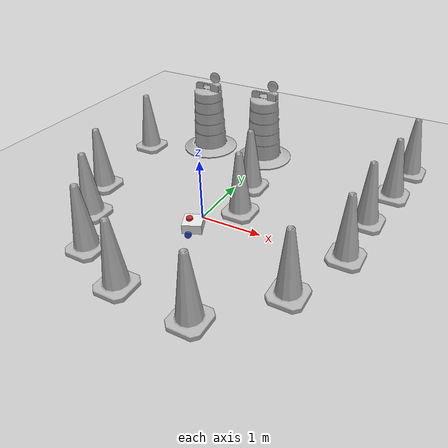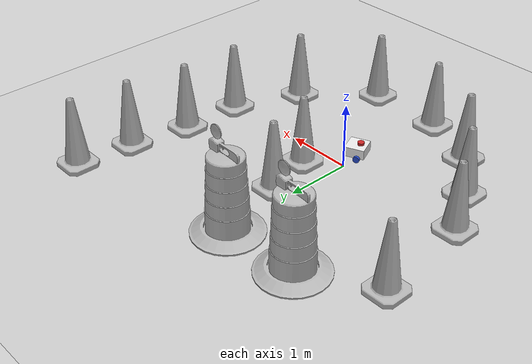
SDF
<sdf version="1.7">
 <world name="default">
  <light name="sun" type="directional">
   <pose>0 0 10 0 -0 0</pose>
   <diffuse>0.8 0.8 0.8 1</diffuse>
   <specular>0.2 0.2 0.2 1</specular>
   <attenuation>
    <range>1000</range>
    <constant>0.9</constant>
    <linear>0.01</linear>
    <quadratic>0.001</quadratic>
   </attenuation>
   <direction>-0.5 0.1 -0.9</direction>
   <spot><inner_angle>0</inner_angle><outer_angle>0</outer_angle><falloff>0</falloff></spot>
  </light>
  <model name="ground_plane">
   <static>1</static>
   <link name="link">
    <collision name="collision">
     <geometry><plane><normal>0 0 1</normal><size>100 100</size></plane></geometry>
     <surface>
      <contact><collide_bitmask>65535</collide_bitmask></contact>
      <friction><ode><mu>100</mu><mu2>50</mu2></ode></friction>
     </surface>
    </collision>
    <visual name="visual">
     <cast_shadows>0</cast_shadows>
     <geometry><plane><normal>0 0 1</normal><size>100 100</size></plane></geometry>
     <material>
      <script><uri>file://media/materials/scripts/gazebo.material</uri><name>Gazebo/Grey</name></script>
     </material>
    </visual>
   </link>
  </model>
  <gravity>0 0 -9.8</gravity>
  <magnetic_field>6e-06 2.3e-05 -4.2e-05</magnetic_field>
  <atmosphere type="adiabatic"/>
  <physics type="ode">
   <max_step_size>0.001</max_step_size>
   <real_time_factor>1</real_time_factor>
   <real_time_update_rate>1000</real_time_update_rate>
  </physics>
  <scene><ambient>0.4 0.4 0.4 1</ambient><background>0.7 0.7 0.7 1</background><shadows>1</shadows></scene>
  <audio><device>default</device></audio>
  <spherical_coordinates>
   <surface_model>EARTH_WGS84</surface_model>
   <latitude_deg>0</latitude_deg>
   <longitude_deg>0</longitude_deg>
   <elevation>0</elevation>
   <heading_deg>0</heading_deg>
  </spherical_coordinates>
  <model name="Construction Cone_clone_0">
   <link name="link">
    <collision name="collision">
     <geometry>
      <mesh><scale>10 10 10</scale><uri>model://construction_cone/meshes/construction_cone.dae</uri></mesh>
     </geometry>
    </collision>
    <visual name="visual">
     <geometry>
      <mesh><scale>10 10 10</scale><uri>model://construction_cone/meshes/construction_cone.dae</uri></mesh>
     </geometry>
    </visual>
    <inertial>
     <inertia><ixx>1</ixx><ixy>0</ixy><ixz>0</ixz><iyy>1</iyy><iyz>0</iyz><izz>1</izz></inertia>
     <mass>1</mass>
    </inertial>
   </link>
   <pose>-2 0 -8e-06 1e-06 -0 0</pose>
  </model>
  <model name="Construction Cone_clone_1">
   <link name="link">
    <collision name="collision">
     <geometry>
      <mesh><scale>10 10 10</scale><uri>model://construction_cone/meshes/construction_cone.dae</uri></mesh>
     </geometry>
    </collision>
    <visual name="visual">
     <geometry>
      <mesh><scale>10 10 10</scale><uri>model://construction_cone/meshes/construction_cone.dae</uri></mesh>
     </geometry>
    </visual>
    <inertial>
     <inertia><ixx>1</ixx><ixy>0</ixy><ixz>0</ixz><iyy>1</iyy><iyz>0</iyz><izz>1</izz></inertia>
     <mass>1</mass>
    </inertial>
   </link>
   <pose>-2.18676 1.5278 -0 0 -0 0</pose>
  </model>
  <model name="Construction Cone_clone_0_clone">
   <link name="link">
    <collision name="collision">
     <geometry>
      <mesh><scale>10 10 10</scale><uri>model://construction_cone/meshes/construction_cone.dae</uri></mesh>
     </geometry>
    </collision>
    <visual name="visual">
     <geometry>
      <mesh><scale>10 10 10</scale><uri>model://construction_cone/meshes/construction_cone.dae</uri></mesh>
     </geometry>
    </visual>
    <inertial>
     <inertia><ixx>1</ixx><ixy>0</ixy><ixz>0</ixz><iyy>1</iyy><iyz>0</iyz><izz>1</izz></inertia>
     <mass>1</mass>
    </inertial>
   </link>
   <pose>-1.04629 -1.40763 -0 0 0 -0.004245</pose>
  </model>
  <model name="my_bot">
   <link name="base_link">
    <inertial>
     <pose>0.055714 0 0.078571 0 -0 0</pose>
     <mass>0.7</mass>
     <inertia>
      <ixx>0.0064169</ixx>
      <ixy>0</ixy>
      <ixz>0.00118929</ixz>
      <iyy>0.00745405</iyy>
      <iyz>0</iyz>
      <izz>0.00876214</izz>
     </inertia>
    </inertial>
    <collision name="base_link_fixed_joint_lump__chassis_collision">
     <pose>0.05 0 0.075 0 -0 0</pose>
     <geometry><box><size>0.3 0.3 0.15</size></box></geometry>
    </collision>
    <collision name="base_link_fixed_joint_lump__caster_wheel_collision_1">
     <pose>0.14 0 0 0 -0 0</pose>
     <geometry><sphere><radius>0.05</radius></sphere></geometry>
     <surface><friction><ode><mu>0.001</mu><mu2>0.001</mu2></ode></friction></surface>
    </collision>
    <collision name="base_link_fixed_joint_lump__laser_frame_collision_2">
     <pose>0 0 0.175 0 -0 0</pose>
     <geometry><cylinder><length>0.04</length><radius>0.05</radius></cylinder></geometry>
    </collision>
    <visual name="base_link_fixed_joint_lump__chassis_visual">
     <pose>0.05 0 0.075 0 -0 0</pose>
     <geometry><box><size>0.3 0.3 0.15</size></box></geometry>
     <material>
      <script><name>Gazebo/White</name><uri>file://media/materials/scripts/gazebo.material</uri></script>
     </material>
    </visual>
    <visual name="base_link_fixed_joint_lump__caster_wheel_visual_1">
     <pose>0.14 0 0 0 -0 0</pose>
     <geometry><sphere><radius>0.05</radius></sphere></geometry>
     <material>
      <script><name>Gazebo/Black</name><uri>file://media/materials/scripts/gazebo.material</uri></script>
     </material>
    </visual>
    <visual name="base_link_fixed_joint_lump__laser_frame_visual_2">
     <pose>0 0 0.175 0 -0 0</pose>
     <geometry><cylinder><length>0.04</length><radius>0.05</radius></cylinder></geometry>
     <material>
      <script><name>Gazebo/Red</name><uri>file://media/materials/scripts/gazebo.material</uri></script>
     </material>
    </visual>
    <sensor name="laser" type="ray">
     <visualize>1</visualize>
     <update_rate>10</update_rate>
     <ray>
      <scan>
       <horizontal>
        <samples>360</samples>
        <min_angle>-3.14</min_angle>
        <max_angle>3.14</max_angle>
        <resolution>1</resolution>
       </horizontal>
       <vertical><samples>1</samples><min_angle>0</min_angle><max_angle>0</max_angle></vertical>
      </scan>
      <range><min>0.3</min><max>12</max></range>
     </ray>
     <plugin name="laser_controller" filename="libgazebo_ros_ray_sensor.so">
      <ros><argument>~/out:=scan</argument></ros>
      <output_type>sensor_msgs/LaserScan</output_type>
      <frame_name>laser_frame</frame_name>
     </plugin>
     <pose>0 0 0.175 0 -0 0</pose>
    </sensor>
   </link>
   <joint name="left_wheel_joint" type="revolute">
    <pose relative_to="base_link">0 0.175 0 -1.5708 0 0</pose>
    <parent>base_link</parent>
    <child>left_wheel</child>
    <axis>
     <xyz>0 0 1</xyz>
     <limit><lower>-1e+16</lower><upper>1e+16</upper></limit>
     <dynamics><spring_reference>0</spring_reference><spring_stiffness>0</spring_stiffness></dynamics>
    </axis>
   </joint>
   <link name="left_wheel">
    <pose relative_to="left_wheel_joint">0 0 0 0 -0 0</pose>
    <inertial>
     <mass>0.1</mass>
     <inertia>
      <ixx>7.58333e-05</ixx>
      <ixy>0</ixy>
      <ixz>0</ixz>
      <iyy>7.58333e-05</iyy>
      <iyz>0</iyz>
      <izz>0.000125</izz>
     </inertia>
    </inertial>
    <collision name="left_wheel_collision">
     <geometry><cylinder><length>0.04</length><radius>0.05</radius></cylinder></geometry>
    </collision>
    <visual name="left_wheel_visual">
     <geometry><cylinder><length>0.04</length><radius>0.05</radius></cylinder></geometry>
     <material>
      <script><name>Gazebo/Blue</name><uri>file://media/materials/scripts/gazebo.material</uri></script>
     </material>
    </visual>
   </link>
   <joint name="right_wheel_joint" type="revolute">
    <pose relative_to="base_link">0 -0.175 0 1.5708 -0 0</pose>
    <parent>base_link</parent>
    <child>right_wheel</child>
    <axis>
     <xyz>0 0 -1</xyz>
     <limit><lower>-1e+16</lower><upper>1e+16</upper></limit>
     <dynamics><spring_reference>0</spring_reference><spring_stiffness>0</spring_stiffness></dynamics>
    </axis>
   </joint>
   <link name="right_wheel">
    <pose relative_to="right_wheel_joint">0 0 0 0 -0 0</pose>
    <inertial>
     <mass>0.1</mass>
     <inertia>
      <ixx>7.58333e-05</ixx>
      <ixy>0</ixy>
      <ixz>0</ixz>
      <iyy>7.58333e-05</iyy>
      <iyz>0</iyz>
      <izz>0.000125</izz>
     </inertia>
    </inertial>
    <collision name="right_wheel_collision">
     <geometry><cylinder><length>0.04</length><radius>0.05</radius></cylinder></geometry>
    </collision>
    <visual name="right_wheel_visual">
     <geometry><cylinder><length>0.04</length><radius>0.05</radius></cylinder></geometry>
     <material>
      <script><name>Gazebo/Blue</name><uri>file://media/materials/scripts/gazebo.material</uri></script>
     </material>
    </visual>
   </link>
   <static>0</static>
   <plugin name="diff_drive" filename="libgazebo_ros_diff_drive.so">
    <left_joint>left_wheel_joint</left_joint>
    <right_joint>right_wheel_joint</right_joint>
    <wheel_separation>0.35</wheel_separation>
    <wheel_diameter>0.1</wheel_diameter>
    <max_wheel_torque>200</max_wheel_torque>
    <max_wheel_acceleration>10.0</max_wheel_acceleration>
    <odometry_frame>odom</odometry_frame>
    <robot_base_frame>base_link</robot_base_frame>
    <publish_odom>1</publish_odom>
    <publish_odom_tf>1</publish_odom_tf>
    <publish_wheel_tf>1</publish_wheel_tf>
   </plugin>
   <pose>0.016349 -0.371384 0.05 0 1.3e-05 0.409147</pose>
  </model>
  <model name="Construction Barrel_clone_clone">
   <link name="link">
    <inertial>
     <pose>0 0 0.4 0 -0 0</pose>
     <mass>500</mass>
     <inertia><ixx>51.2096</ixx><iyy>51.2096</iyy><izz>25</izz><ixy>0</ixy><ixz>0</ixz><iyz>0</iyz></inertia>
    </inertial>
    <collision name="collision">
     <geometry><mesh><uri>model://construction_barrel/meshes/construction_barrel.dae</uri></mesh></geometry>
    </collision>
    <visual name="visual">
     <geometry><mesh><uri>model://construction_barrel/meshes/construction_barrel.dae</uri></mesh></geometry>
    </visual>
   </link>
   <pose>-1.1687 2.09596 -1e-06 3e-06 7e-06 -3e-05</pose>
  </model>
  <model name="Construction Barrel_clone_clone_clone">
   <link name="link">
    <inertial>
     <pose>0 0 0.4 0 -0 0</pose>
     <mass>500</mass>
     <inertia><ixx>51.2096</ixx><iyy>51.2096</iyy><izz>25</izz><ixy>0</ixy><ixz>0</ixz><iyz>0</iyz></inertia>
    </inertial>
    <collision name="collision">
     <geometry><mesh><uri>model://construction_barrel/meshes/construction_barrel.dae</uri></mesh></geometry>
    </collision>
    <visual name="visual">
     <geometry><mesh><uri>model://construction_barrel/meshes/construction_barrel.dae</uri></mesh></geometry>
    </visual>
   </link>
   <pose>-0.032379 2.17935 0 0 0 -2.8e-05</pose>
  </model>
  <model name="Construction Cone_clone_1_clone">
   <link name="link">
    <collision name="collision">
     <geometry>
      <mesh><scale>10 10 10</scale><uri>model://construction_cone/meshes/construction_cone.dae</uri></mesh>
     </geometry>
    </collision>
    <visual name="visual">
     <geometry>
      <mesh><scale>10 10 10</scale><uri>model://construction_cone/meshes/construction_cone.dae</uri></mesh>
     </geometry>
    </visual>
    <inertial>
     <inertia><ixx>1</ixx><ixy>0</ixy><ixz>0</ixz><iyy>1</iyy><iyz>0</iyz><izz>1</izz></inertia>
     <mass>1</mass>
    </inertial>
   </link>
   <pose>-1.59203 -0.7207 -6e-06 -4e-06 0 0</pose>
  </model>
  <model name="Construction Cone_clone_1_clone_0">
   <link name="link">
    <collision name="collision">
     <geometry>
      <mesh><scale>10 10 10</scale><uri>model://construction_cone/meshes/construction_cone.dae</uri></mesh>
     </geometry>
    </collision>
    <visual name="visual">
     <geometry>
      <mesh><scale>10 10 10</scale><uri>model://construction_cone/meshes/construction_cone.dae</uri></mesh>
     </geometry>
    </visual>
    <inertial>
     <inertia><ixx>1</ixx><ixy>0</ixy><ixz>0</ixz><iyy>1</iyy><iyz>0</iyz><izz>1</izz></inertia>
     <mass>1</mass>
    </inertial>
   </link>
   <pose>-0.1546 -1.80142 -0 0 -0 0</pose>
  </model>
  <model name="Construction Cone_clone_1_clone_1">
   <link name="link">
    <collision name="collision">
     <geometry>
      <mesh><scale>10 10 10</scale><uri>model://construction_cone/meshes/construction_cone.dae</uri></mesh>
     </geometry>
    </collision>
    <visual name="visual">
     <geometry>
      <mesh><scale>10 10 10</scale><uri>model://construction_cone/meshes/construction_cone.dae</uri></mesh>
     </geometry>
    </visual>
    <inertial>
     <inertia><ixx>1</ixx><ixy>0</ixy><ixz>0</ixz><iyy>1</iyy><iyz>0</iyz><izz>1</izz></inertia>
     <mass>1</mass>
    </inertial>
   </link>
   <pose>1.01868 -1.85177 -0 0 -0 0</pose>
  </model>
  <model name="Construction Cone_clone_1_clone_2">
   <link name="link">
    <collision name="collision">
     <geometry>
      <mesh><scale>10 10 10</scale><uri>model://construction_cone/meshes/construction_cone.dae</uri></mesh>
     </geometry>
    </collision>
    <visual name="visual">
     <geometry>
      <mesh><scale>10 10 10</scale><uri>model://construction_cone/meshes/construction_cone.dae</uri></mesh>
     </geometry>
    </visual>
    <inertial>
     <inertia><ixx>1</ixx><ixy>0</ixy><ixz>0</ixz><iyy>1</iyy><iyz>0</iyz><izz>1</izz></inertia>
     <mass>1</mass>
    </inertial>
   </link>
   <pose>0.269057 1.10649 -0 0 -1e-06 0</pose>
  </model>
  <model name="Construction Cone_clone_1_clone_3">
   <link name="link">
    <collision name="collision">
     <geometry>
      <mesh><scale>10 10 10</scale><uri>model://construction_cone/meshes/construction_cone.dae</uri></mesh>
     </geometry>
    </collision>
    <visual name="visual">
     <geometry>
      <mesh><scale>10 10 10</scale><uri>model://construction_cone/meshes/construction_cone.dae</uri></mesh>
     </geometry>
    </visual>
    <inertial>
     <inertia><ixx>1</ixx><ixy>0</ixy><ixz>0</ixz><iyy>1</iyy><iyz>0</iyz><izz>1</izz></inertia>
     <mass>1</mass>
    </inertial>
   </link>
   <pose>0.467229 0.361024 -4e-06 4e-06 -1e-06 0</pose>
  </model>
  <model name="Construction Cone_clone_1_clone_4">
   <link name="link">
    <collision name="collision">
     <geometry>
      <mesh><scale>10 10 10</scale><uri>model://construction_cone/meshes/construction_cone.dae</uri></mesh>
     </geometry>
    </collision>
    <visual name="visual">
     <geometry>
      <mesh><scale>10 10 10</scale><uri>model://construction_cone/meshes/construction_cone.dae</uri></mesh>
     </geometry>
    </visual>
    <inertial>
     <inertia><ixx>1</ixx><ixy>0</ixy><ixz>0</ixz><iyy>1</iyy><iyz>0</iyz><izz>1</izz></inertia>
     <mass>1</mass>
    </inertial>
   </link>
   <pose>1.89204 -0.941514 -0 0 -0 0</pose>
  </model>
  <model name="Construction Cone_clone_1_clone_5">
   <link name="link">
    <collision name="collision">
     <geometry>
      <mesh><scale>10 10 10</scale><uri>model://construction_cone/meshes/construction_cone.dae</uri></mesh>
     </geometry>
    </collision>
    <visual name="visual">
     <geometry>
      <mesh><scale>10 10 10</scale><uri>model://construction_cone/meshes/construction_cone.dae</uri></mesh>
     </geometry>
    </visual>
    <inertial>
     <inertia><ixx>1</ixx><ixy>0</ixy><ixz>0</ixz><iyy>1</iyy><iyz>0</iyz><izz>1</izz></inertia>
     <mass>1</mass>
    </inertial>
   </link>
   <pose>2.30779 0.075576 -0 0 -0 0</pose>
  </model>
  <model name="Construction Cone_clone_1_clone_6">
   <link name="link">
    <collision name="collision">
     <geometry>
      <mesh><scale>10 10 10</scale><uri>model://construction_cone/meshes/construction_cone.dae</uri></mesh>
     </geometry>
    </collision>
    <visual name="visual">
     <geometry>
      <mesh><scale>10 10 10</scale><uri>model://construction_cone/meshes/construction_cone.dae</uri></mesh>
     </geometry>
    </visual>
    <inertial>
     <inertia><ixx>1</ixx><ixy>0</ixy><ixz>0</ixz><iyy>1</iyy><iyz>0</iyz><izz>1</izz></inertia>
     <mass>1</mass>
    </inertial>
   </link>
   <pose>2.32772 1.00676 -3e-06 -3e-06 -1e-06 -0</pose>
  </model>
  <model name="Construction Cone_clone_1_clone_7">
   <link name="link">
    <collision name="collision">
     <geometry>
      <mesh><scale>10 10 10</scale><uri>model://construction_cone/meshes/construction_cone.dae</uri></mesh>
     </geometry>
    </collision>
    <visual name="visual">
     <geometry>
      <mesh><scale>10 10 10</scale><uri>model://construction_cone/meshes/construction_cone.dae</uri></mesh>
     </geometry>
    </visual>
    <inertial>
     <inertia><ixx>1</ixx><ixy>0</ixy><ixz>0</ixz><iyy>1</iyy><iyz>0</iyz><izz>1</izz></inertia>
     <mass>1</mass>
    </inertial>
   </link>
   <pose>2.49504 1.91189 -0 0 -0 0</pose>
  </model>
  <model name="Construction Cone_clone_1_clone_8">
   <link name="link">
    <collision name="collision">
     <geometry>
      <mesh><scale>10 10 10</scale><uri>model://construction_cone/meshes/construction_cone.dae</uri></mesh>
     </geometry>
    </collision>
    <visual name="visual">
     <geometry>
      <mesh><scale>10 10 10</scale><uri>model://construction_cone/meshes/construction_cone.dae</uri></mesh>
     </geometry>
    </visual>
    <inertial>
     <inertia><ixx>1</ixx><ixy>0</ixy><ixz>0</ixz><iyy>1</iyy><iyz>0</iyz><izz>1</izz></inertia>
     <mass>1</mass>
    </inertial>
   </link>
   <pose>2.59136 2.78146 -0 0 -1e-06 0</pose>
  </model>
 </world>
</sdf>
